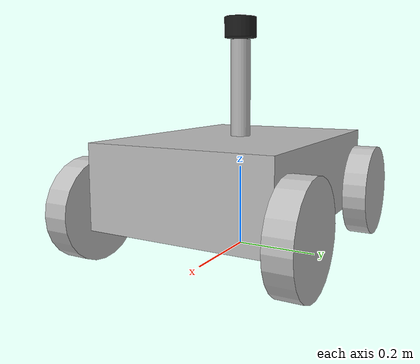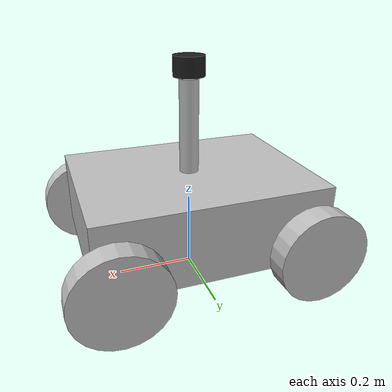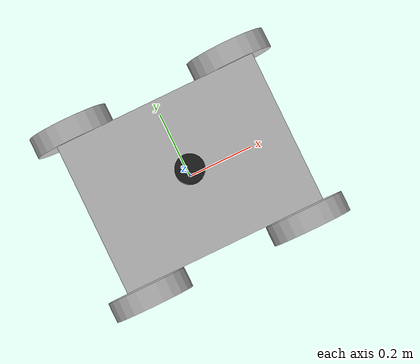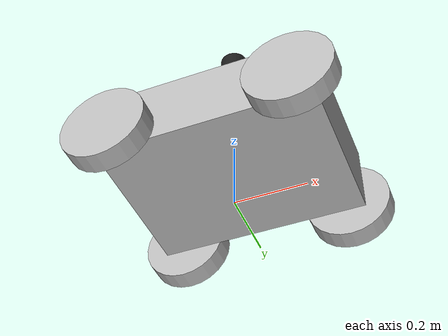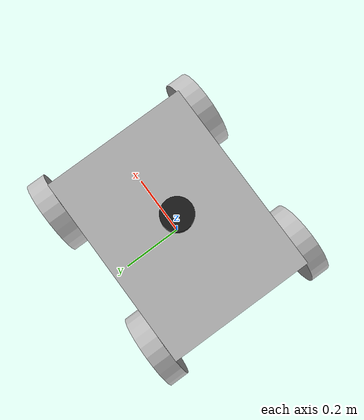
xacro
<?xml version="1.0"?>

<robot xmlns:xacro="http://www.ros.org/wiki/xacro"
       name="orion">

    <!--                  ORION Robot Assembly                     -->

    <!-- Common Constants -->
    <xacro:include filename="../common/constants.xacro"/>

    <!-- Materials -->
    <xacro:include filename="../materials/materials.xacro"/>

    <!-- Robot Components -->
    <xacro:include filename="../links/chassis.xacro"/>
    <xacro:include filename="../links/mast.xacro"/>
    <xacro:include filename="../links/wheel.xacro"/>
    <xacro:include filename="../sensors/lidar.xacro"/>
    <xacro:include filename="../sensors/imu.xacro"/>

    <!-- ROS2 Control -->
    <xacro:include filename="../control/ros2_control.xacro"/>
    <xacro:include filename="../gazebo/gazebo_control.xacro"/>
    <xacro:include filename="../gazebo/lidar_gazebo.xacro"/>

    <!--                    Build the Robot                        -->

    <!-- Chassis -->
    <xacro:orion_chassis/>

    <!-- Sensor Mast -->
    <xacro:orion_mast/>

    <xacro:orion_lidar
    parent_link="sensor_mast_link"/>

    <!-- IMU: needed for tilt safety and slip estimation -->
    <xacro:orion_imu parent_link="base_link"/>

    <!-- ================= Front Left Wheel ================= -->

    <xacro:orion_wheel
        wheel_name="front_left_wheel"
        parent_link="base_link"
        x="${wheel_x}"
        y="${wheel_y}"
        z="${wheel_radius}"/>

    <!-- ================= Front Right Wheel ================= -->

    <xacro:orion_wheel
        wheel_name="front_right_wheel"
        parent_link="base_link"
        x="${wheel_x}"
        y="${-wheel_y}"
        z="${wheel_radius}"/>

    <!-- ================= Rear Left Wheel ================= -->

    <xacro:orion_wheel
        wheel_name="rear_left_wheel"
        parent_link="base_link"
        x="${-wheel_x}"
        y="${wheel_y}"
        z="${wheel_radius}"/>

    <!-- ================= Rear Right Wheel ================= -->

    <xacro:orion_wheel
        wheel_name="rear_right_wheel"
        parent_link="base_link"
        x="${-wheel_x}"
        y="${-wheel_y}"
        z="${wheel_radius}"/>

    <!--                    ROS2 Control                           -->

    <xacro:orion_ros2_control/>
    <xacro:orion_gazebo_control/>
    <xacro:orion_lidar_gazebo/>

</robot>

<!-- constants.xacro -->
<robot xmlns:xacro="http://www.ros.org/wiki/xacro">

    <!--                  Project Information                      -->

    <xacro:property name="robot_name" value="ORION"/>
    <xacro:property name="robot_version" value="1.0"/>
    <xacro:property name="mission_name" value="ARES"/>

    <!--                 ORION Physical Dimensions                 -->

    <!-- Chassis -->
    <xacro:property name="chassis_length" value="0.60"/>
    <xacro:property name="chassis_width"  value="0.45"/>
    <xacro:property name="chassis_height" value="0.20"/>

    <!-- Ground Clearance -->
    <xacro:property name="ground_clearance" value="0.08"/>

    <!-- Chassis Center Height -->
    <xacro:property name="base_height"
                    value="${ground_clearance + chassis_height/2}"/>

    <!-- Half Dimensions -->
    <xacro:property name="half_length"
                    value="${chassis_length/2}"/>

    <xacro:property name="half_width"
                    value="${chassis_width/2}"/>

    <!--                    Wheel Parameters                       -->

    <!-- Large Off-road Wheels -->
    <xacro:property name="wheel_radius" value="0.12"/>
    <xacro:property name="wheel_width"  value="0.06"/>
    <xacro:property name="wheel_mass"   value="1.5"/>

    <!-- Robot Geometry -->
    <xacro:property name="wheelbase" value="0.40"/>
    <xacro:property name="track_width" value="0.36"/>

    <!-- Derived Wheel Dimensions -->
    <xacro:property name="wheel_diameter"
                    value="${2 * wheel_radius}"/>

    <xacro:property name="wheel_offset"
                    value="${wheel_width/2}"/>

    <!-- Wheel Positions -->
    <xacro:property name="wheel_x" value="0.25"/>
    <xacro:property name="wheel_y" value="0.26"/>

    <!--                     Robot Masses                          -->

    <xacro:property name="chassis_mass" value="8.0"/>

    <!--                   Sensor Parameters                       -->

    <!-- Sensor Mast -->
    <xacro:property name="mast_height" value="0.24"/>
    <xacro:property name="mast_radius" value="0.025"/>

    <!-- Sensor Heights -->
    <xacro:property name="camera_height" value="0.26"/>
    <xacro:property name="lidar_height" value="0.34"/>
    <xacro:property name="camera360_height" value="0.42"/>

    <!--                    Link Name Helpers                      -->

    <xacro:property name="front_left"  value="front_left_wheel"/>
    <xacro:property name="front_right" value="front_right_wheel"/>
    <xacro:property name="rear_left"   value="rear_left_wheel"/>
    <xacro:property name="rear_right"  value="rear_right_wheel"/>

</robot>

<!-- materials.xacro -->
<robot xmlns:xacro="http://www.ros.org/wiki/xacro">

    <!--                  ORION Material Library                   -->

    <!-- Main Chassis -->
    <material name="orion_silver">
        <color rgba="0.75 0.75 0.75 1.0"/>
    </material>

    <!-- Wheels -->
    <material name="wheel_black">
        <color rgba="0.10 0.10 0.10 1.0"/>
    </material>

    <!-- Sensor Mast -->
    <material name="mast_gray">
        <color rgba="0.55 0.55 0.55 1.0"/>
    </material>

    <!-- LiDAR -->
    <material name="lidar_dark">
        <color rgba="0.20 0.20 0.20 1.0"/>
    </material>

    <!-- RGB Camera -->
    <material name="camera_blue">
        <color rgba="0.15 0.30 0.85 1.0"/>
    </material>

    <!-- 360 Camera -->
    <material name="camera360_black">
        <color rgba="0.05 0.05 0.05 1.0"/>
    </material>

    <!-- Ground Truth Marker -->
    <material name="debug_red">
        <color rgba="1.0 0.0 0.0 1.0"/>
    </material>

    <!-- Transparent Sensor Visualization -->
    <material name="transparent">
        <color rgba="1.0 1.0 1.0 0.25"/>
    </material>
</robot>

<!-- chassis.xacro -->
<robot xmlns:xacro="http://www.ros.org/wiki/xacro">

    <!--                  Import Robot Constants                   -->

    <xacro:include filename="../common/constants.xacro"/>

    <!--                  ORION Chassis Macro                      -->

    <xacro:macro name="orion_chassis">

        <!--                     Base Link                         -->

        <link name="base_link">

            <!-- ================= Visual Geometry ================ -->

            <visual>

                <origin
                    xyz="0 0 ${base_height}"
                    rpy="0 0 0"/>

                <geometry>

                    <box
                        size="${chassis_length}
                              ${chassis_width}
                              ${chassis_height}"/>

                </geometry>

                <material name="orion_silver"/>

            </visual>

            <!-- =============== Collision Geometry =============== -->

            <collision>

                <origin
                    xyz="0 0 ${base_height}"
                    rpy="0 0 0"/>

                <geometry>

                    <box
                        size="${chassis_length}
                              ${chassis_width}
                              ${chassis_height}"/>

                </geometry>

            </collision>

            <!-- =============== Inertial Properties ============== -->

            <inertial>

                <origin
                    xyz="0 0 ${base_height}"
                    rpy="0 0 0"/>

                <mass value="${chassis_mass}"/>

                <inertia
                    ixx="0.30"
                    ixy="0.0"
                    ixz="0.0"
                    iyy="0.45"
                    iyz="0.0"
                    izz="0.55"/>

            </inertial>

        </link>

    </xacro:macro>

</robot>

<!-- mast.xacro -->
<robot xmlns:xacro="http://www.ros.org/wiki/xacro">

    <!--                  Import Robot Constants                   -->

    <xacro:include filename="../common/constants.xacro"/>

    <!--                    ORION Mast Macro                       -->

    <xacro:macro name="orion_mast">

        <!--                  Sensor Mast Link                     -->

        <link name="sensor_mast_link">

            <!-- Visual Representation -->

            <visual>

                <origin
                    xyz="0 0 0"
                    rpy="0 0 0"/>

                <geometry>

                    <cylinder
                        radius="${mast_radius}"
                        length="${mast_height}"/>

                </geometry>

                <material name="orion_silver"/>

            </visual>

            <!-- Collision Representation -->

            <collision>

                <origin
                    xyz="0 0 0"
                    rpy="0 0 0"/>

                <geometry>

                    <cylinder
                        radius="${mast_radius}"
                        length="${mast_height}"/>

                </geometry>

            </collision>

            <!-- Physical Properties -->

            <inertial>

                <origin
                    xyz="0 0 0"
                    rpy="0 0 0"/>

                <mass value="0.6"/>

                <inertia
                    ixx="0.002"
                    ixy="0.0"
                    ixz="0.0"
                    iyy="0.002"
                    iyz="0.0"
                    izz="0.0003"/>

            </inertial>

        </link>

        <!--                 Mast Fixed Joint                      -->

        <joint
            name="sensor_mast_joint"
            type="fixed">

            <parent link="base_link"/>

            <child link="sensor_mast_link"/>

            <!--
                Place the center of the mast at:
                Top of chassis + Half mast height

                Top of chassis = base_height + chassis_height/2
            -->

            <origin
                xyz="0 0 ${base_height + chassis_height/2 + mast_height/2}"
                rpy="0 0 0"/>

        </joint>

    </xacro:macro>

</robot>

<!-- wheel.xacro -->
<robot xmlns:xacro="http://www.ros.org/wiki/xacro">

    <!-- Import Constants -->
    <xacro:include filename="../common/constants.xacro"/>

    <!--                     ORION Wheel Macro                     -->

    <xacro:macro
        name="orion_wheel"
        params="wheel_name parent_link x y z">

        <!--                     Wheel Link                        -->

        <link name="${wheel_name}">

            <!-- Visual -->

            <visual>

                <origin
                    xyz="0 0 0"
                    rpy="1.57079632679 0 0"/>

                <geometry>

                    <cylinder
                        radius="${wheel_radius}"
                        length="${wheel_width}"/>

                </geometry>

                <material name="orion_silver"/>

            </visual>

            <!-- Collision -->

            <collision>

                <origin
                    xyz="0 0 0"
                    rpy="1.57079632679 0 0"/>

                <geometry>

                    <cylinder
                        radius="${wheel_radius}"
                        length="${wheel_width}"/>

                </geometry>

            </collision>

            <!-- Inertia -->

            <inertial>

                <origin xyz="0 0 0"/>

                <mass value="${wheel_mass}"/>

                <inertia
                    ixx="0.01"
                    ixy="0"
                    ixz="0"
                    iyy="0.01"
                    iyz="0"
                    izz="0.01"/>

            </inertial>

        </link>

        <!--                    Wheel Joint                        -->

        <joint
            name="${wheel_name}_joint"
            type="continuous">

            <parent link="${parent_link}"/>

            <child link="${wheel_name}"/>

            <origin
                xyz="${x} ${y} ${z}"
                rpy="0 0 0"/>
           <axis xyz="0 1 0"/>
	  <dynamics damping="0.2" friction="0.1"/>

        </joint>

    </xacro:macro>

</robot>

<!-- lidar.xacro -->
<robot xmlns:xacro="http://www.ros.org/wiki/xacro">

  <!--                    ORION 2D LiDAR                         -->

  <xacro:macro
      name="orion_lidar"
      params="parent_link">

    <!-- ================= LiDAR Link ================= -->

    <link name="lidar_link">

      <visual>
        <origin xyz="0 0 0" rpy="0 0 0"/>

        <geometry>
          <cylinder radius="0.04" length="0.05"/>
        </geometry>

        <material name="orion_black"/>
      </visual>

      <collision>
        <origin xyz="0 0 0" rpy="0 0 0"/>

        <geometry>
          <cylinder radius="0.04" length="0.05"/>
        </geometry>
      </collision>

      <inertial>
        <origin xyz="0 0 0"/>

        <mass value="0.20"/>

        <inertia
          ixx="0.0002"
          ixy="0"
          ixz="0"
          iyy="0.0002"
          iyz="0"
          izz="0.0002"/>
      </inertial>

    </link>

    <!-- ================= Mount Joint ================= -->

    <joint
        name="lidar_joint"
        type="fixed">

      <parent link="${parent_link}"/>
      <child link="lidar_link"/>

      <!-- Mounted on top of the mast -->
      <origin
          xyz="0 0 0.15"
          rpy="0 0 0"/>

    </joint>

  </xacro:macro>

</robot>

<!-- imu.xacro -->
<robot xmlns:xacro="http://www.ros.org/wiki/xacro">

  <!-- IMU at the chassis centre. On the real rover, measure where the IMU
       actually sits and update xyz/rpy (axes must match: x forward, z up). -->
  <xacro:macro name="orion_imu" params="parent_link xyz:='0 0 0.05' rpy:='0 0 0'">

    <link name="imu_link">
      <inertial>
        <mass value="0.02"/>
        <inertia ixx="1e-6" ixy="0" ixz="0" iyy="1e-6" iyz="0" izz="1e-6"/>
      </inertial>
    </link>

    <joint name="imu_joint" type="fixed">
      <parent link="${parent_link}"/>
      <child link="imu_link"/>
      <origin xyz="${xyz}" rpy="${rpy}"/>
    </joint>

    <gazebo reference="imu_link">
      <sensor name="imu_sensor" type="imu">
        <always_on>true</always_on>
        <update_rate>100</update_rate>
        <topic>/imu/data</topic>
        <gz_frame_id>imu_link</gz_frame_id>
        <imu>
          <angular_velocity>
            <x><noise type="gaussian"><mean>0</mean><stddev>0.002</stddev></noise></x>
            <y><noise type="gaussian"><mean>0</mean><stddev>0.002</stddev></noise></y>
            <z><noise type="gaussian"><mean>0</mean><stddev>0.002</stddev></noise></z>
          </angular_velocity>
          <linear_acceleration>
            <x><noise type="gaussian"><mean>0</mean><stddev>0.02</stddev></noise></x>
            <y><noise type="gaussian"><mean>0</mean><stddev>0.02</stddev></noise></y>
            <z><noise type="gaussian"><mean>0</mean><stddev>0.02</stddev></noise></z>
          </linear_acceleration>
        </imu>
      </sensor>
    </gazebo>

  </xacro:macro>
</robot>

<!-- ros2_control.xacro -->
<robot xmlns:xacro="http://www.ros.org/wiki/xacro">

  <!--                  ORION ROS2 Control Macro                 -->

  <xacro:arg name="hardware" default="gazebo"/>
  <xacro:arg name="port" default="/dev/ttyACM0"/>
  <xacro:arg name="baud" default="921600"/>
  <!-- decoder counts per motor revolution, after x4 quadrature decoding (GUESS) -->
  <xacro:arg name="encoder_cpr" default="2048"/>
  <!-- motor revolutions per wheel revolution (GUESS) -->
  <xacro:arg name="gear_ratio" default="30"/>
  <!-- motor torque constant, N m/A at the motor shaft; 0 disables back-EMF correction of the
       duty-based current estimate (used only without current sensing) -->
  <xacro:arg name="kt" default="0.0"/>
  <!-- motor terminal resistance, ohm (GUESS) -->
  <xacro:arg name="motor_resistance" default="0.5"/>
  <xacro:arg name="brake_on_idle" default="false"/>
  <!-- bound (rad/s per wheel) of orion_msgs/WheelPerturbation on /orion/wheel_perturbation,
       the fault-injection hook; 0 = disabled (docs/INTERFACES.md) -->
  <xacro:arg name="perturbation_max_rad_s" default="0.0"/>

  <xacro:macro name="orion_ros2_control">

    <xacro:property name="hardware" value="$(arg hardware)"/>
    <xacro:if value="${hardware not in ['gazebo', 'serial']}">
      ${xacro.fatal("hardware must be 'gazebo' or 'serial', got '" + hardware + "'")}
    </xacro:if>

    <ros2_control
        name="orion_system"
        type="system">

      <hardware>

        <xacro:if value="${hardware == 'gazebo'}">
          <!-- Gazebo ros2_control Plugin -->
          <plugin>gz_ros2_control/GazeboSimSystem</plugin>
        </xacro:if>

        <xacro:if value="${hardware == 'serial'}">
          <!-- Real rover: wheel firmware over a serial link -->
          <plugin>orion_hardware/OrionSystem</plugin>
          <param name="port">$(arg port)</param>
          <param name="baud">$(arg baud)</param>
          <param name="encoder_cpr">$(arg encoder_cpr)</param>
          <param name="gear_ratio">$(arg gear_ratio)</param>
          <param name="kt">$(arg kt)</param>
          <param name="motor_resistance">$(arg motor_resistance)</param>
          <param name="brake_on_idle">$(arg brake_on_idle)</param>
          <param name="perturbation_max_rad_s">$(arg perturbation_max_rad_s)</param>
        </xacro:if>

      </hardware>

      <!-- Firmware wheel slots (motor_index) follow the protocol order FL FR RL RR. Set a
           joint's direction to -1 if its motor counts up when the wheel turns URDF-negative. -->

      <!--                Front Left Wheel Joint                 -->

      <joint name="front_left_wheel_joint">

        <xacro:if value="${hardware == 'serial'}">
          <param name="motor_index">0</param>
          <param name="direction">1</param>
        </xacro:if>

        <command_interface name="velocity"/>

        <state_interface name="position"/>

        <state_interface name="velocity"/>

        <state_interface name="effort"/>

      </joint>

      <!--               Front Right Wheel Joint                 -->

      <joint name="front_right_wheel_joint">

        <xacro:if value="${hardware == 'serial'}">
          <param name="motor_index">1</param>
          <param name="direction">1</param>
        </xacro:if>

        <command_interface name="velocity"/>

        <state_interface name="position"/>

        <state_interface name="velocity"/>

        <state_interface name="effort"/>

      </joint>

      <!--                 Rear Left Wheel Joint                 -->

      <joint name="rear_left_wheel_joint">

        <xacro:if value="${hardware == 'serial'}">
          <param name="motor_index">2</param>
          <param name="direction">1</param>
        </xacro:if>

        <command_interface name="velocity"/>

        <state_interface name="position"/>

        <state_interface name="velocity"/>

        <state_interface name="effort"/>

      </joint>

      <!--                Rear Right Wheel Joint                 -->

      <joint name="rear_right_wheel_joint">

        <xacro:if value="${hardware == 'serial'}">
          <param name="motor_index">3</param>
          <param name="direction">1</param>
        </xacro:if>

        <command_interface name="velocity"/>

        <state_interface name="position"/>

        <state_interface name="velocity"/>

        <state_interface name="effort"/>

      </joint>

    </ros2_control>

  </xacro:macro>

</robot>
